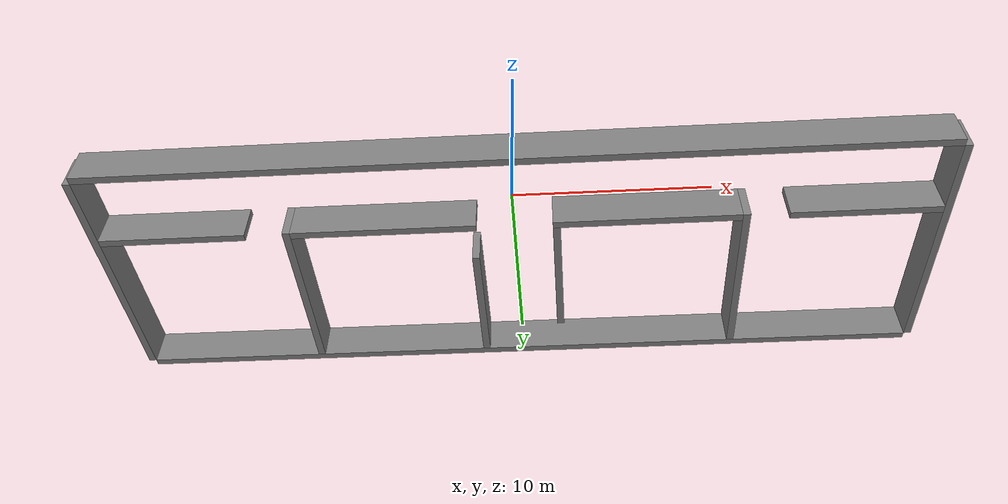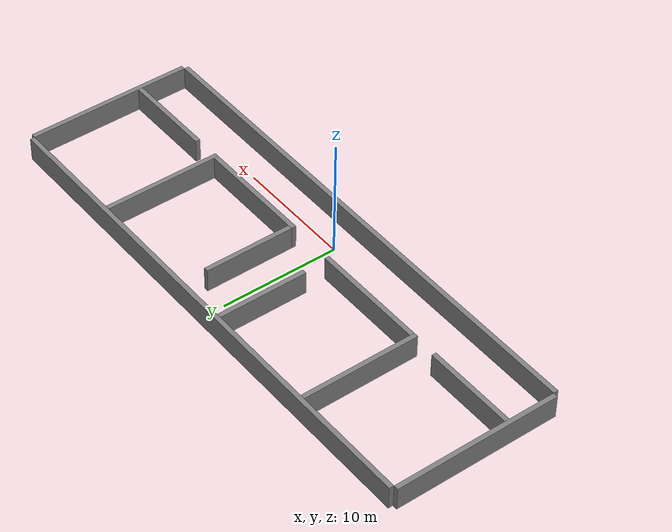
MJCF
<mujoco model="walls">

	<default>
		<default class="atlas_transpalet_walls">
			<default class="atlas_transpalet_wall">
				<geom type="box" pos="0 0 0" size="0 0 0" euler="0 0 0" mass="5"/>
			</default>
		</default>
	</default>

	<worldbody>
		<body pos="0 0 0" euler="0 0 0">
			<geom name="wall_1" class="atlas_transpalet_wall" pos="0 -2.2 1" size="22 0.2 1"/>
			<geom name="wall_2" class="atlas_transpalet_wall" pos="-22.2 5 1" size="0.2 7 1"/>
			<geom name="wall_3" class="atlas_transpalet_wall" pos="0 12.2 1" size="22 0.2 1"/>
			<geom name="wall_4" class="atlas_transpalet_wall" pos="22.2 5 1" size="0.2 7 1"/>
			<geom name="wall_5" class="atlas_transpalet_wall" pos="-12 7 1" size="0.2 5 1"/>
			<geom name="wall_6" class="atlas_transpalet_wall" pos="-2.2 8.2 1" size="0.2 3.8 1"/>
			<geom name="wall_7" class="atlas_transpalet_wall" pos="2.2 6.2 1" size="0.2 3.8 1"/>
			<geom name="wall_8" class="atlas_transpalet_wall" pos="12 7 1" size="0.2 5 1"/>
			<geom name="wall_9" class="atlas_transpalet_wall" pos="-18.1 2.2 1" size="3.9 0.2 1"/>
			<geom name="wall_10" class="atlas_transpalet_wall" pos="-6.9 2.2 1" size="4.9 0.2 1"/>
			<geom name="wall_11" class="atlas_transpalet_wall" pos="6.9 2.2 1" size="4.9 0.2 1"/>
			<geom name="wall_12" class="atlas_transpalet_wall" pos="18.1 2.2 1" size="3.9 0.2 1"/>
		</body>
	</worldbody>

</mujoco>
